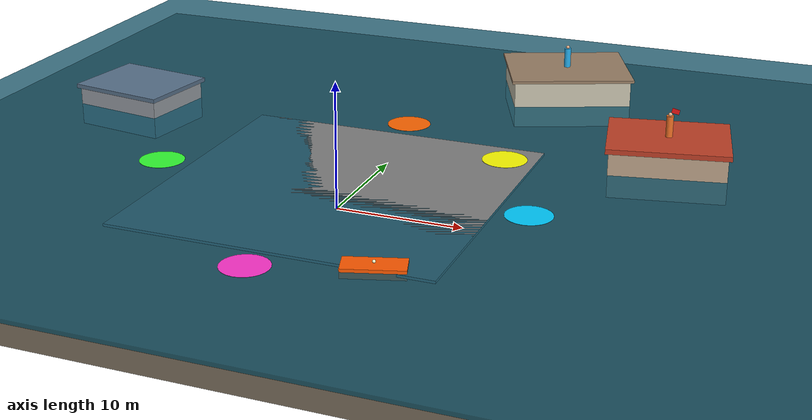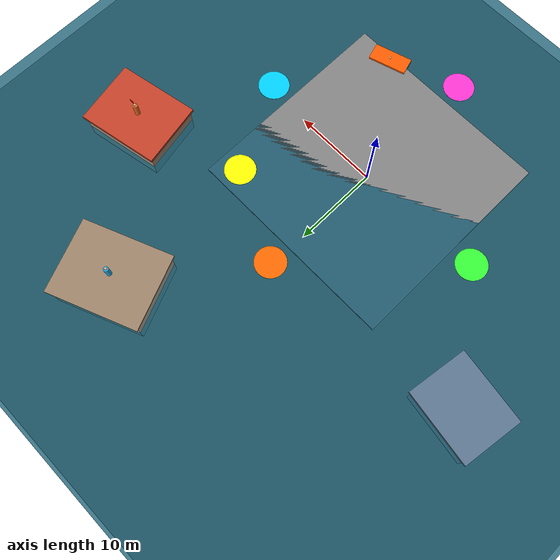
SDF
<sdf version="1.8">
 <world name="sutra_coastal_flood_world">
  <physics name="500hz" type="dart">
   <max_step_size>0.002</max_step_size>
   <real_time_factor>1.0</real_time_factor>
   <real_time_update_rate>500</real_time_update_rate>
  </physics>
  <plugin filename="gz-sim-physics-system" name="gz::sim::systems::Physics"/>
  <plugin filename="gz-sim-user-commands-system" name="gz::sim::systems::UserCommands"/>
  <plugin filename="gz-sim-scene-broadcaster-system" name="gz::sim::systems::SceneBroadcaster"/>
  <plugin filename="gz-sim-sensors-system" name="gz::sim::systems::Sensors">
   <render_engine>ogre2</render_engine>
  </plugin>
  <plugin filename="gz-sim-imu-system" name="gz::sim::systems::Imu"/>
  <plugin filename="gz-sim-air-pressure-system" name="gz::sim::systems::AirPressure"/>
  <plugin filename="gz-sim-magnetometer-system" name="gz::sim::systems::Magnetometer"/>
  <plugin filename="gz-sim-navsat-system" name="gz::sim::systems::NavSat"/>
  <plugin filename="gz-sim-wind-effects-system" name="gz::sim::systems::WindEffects">
   <horizontal><magnitude>0.0</magnitude><direction>1.0 0.0 0.0</direction></horizontal>
   <vertical><magnitude>0.0</magnitude></vertical>
  </plugin>
  <atmosphere type="adiabatic"/>
  <scene>
   <ambient>0.35 0.38 0.42 1.0</ambient>
   <background>0.45 0.55 0.65 1.0</background>
   <shadows>true</shadows>
   <grid>false</grid>
  </scene>
  <light name="sun" type="directional">
   <pose>0 0 100 0 0 0</pose>
   <diffuse>0.88 0.88 0.85 1</diffuse>
   <specular>0.35 0.35 0.35 1</specular>
   <direction>-0.3 0.3 -0.9</direction>
  </light>
  <model name="coastal_riverbed">
   <static>true</static>
   <link name="link">
    <collision name="col">
     <geometry><plane><normal>0 0 1</normal><size>300 300</size></plane></geometry>
    </collision>
    <visual name="vis">
     <geometry><plane><normal>0 0 1</normal><size>300 300</size></plane></geometry>
     <material>
      <ambient>0.28 0.25 0.20 1</ambient>
      <diffuse>0.38 0.34 0.28 1</diffuse>
      <specular>0.08 0.08 0.08 1</specular>
      <pbr><metal><roughness>0.90</roughness><metalness>0.05</metalness></metal></pbr>
     </material>
    </visual>
   </link>
  </model>
  <model name="flood_water_surface">
   <static>true</static>
   <pose>0 0 1.65 0 0 0</pose>
   <link name="link">
    <visual name="vis">
     <geometry><plane><normal>0 0 1</normal><size>300 300</size></plane></geometry>
     <material>
      <ambient>0.05 0.25 0.32 0.80</ambient>
      <diffuse>0.08 0.35 0.44 0.80</diffuse>
      <specular>0.85 0.90 0.95 0.85</specular>
      <pbr><metal><roughness>0.05</roughness><metalness>0.15</metalness></metal></pbr>
     </material>
    </visual>
   </link>
  </model>
  <model name="coastal_launch_platform">
   <static>true</static>
   <pose>0 0 1.70 0 0 0</pose>
   <link name="link">
    <collision name="col"><geometry><box><size>25.0 25.0 0.20</size></box></geometry></collision>
    <visual name="vis">
     <geometry><box><size>25.0 25.0 0.20</size></box></geometry>
     <material>
      <ambient>0.35 0.35 0.35 1</ambient>
      <diffuse>0.50 0.50 0.50 1</diffuse>
      <specular>0.2 0.2 0.2 1</specular>
     </material>
    </visual>
   </link>
  </model>
  <model name="helipad_alpha">
   <static>true</static>
   <pose>15.0 0.0 1.81 0 0 0</pose>
   <link name="l">
    <visual name="v">
     <geometry><cylinder><radius>1.8</radius><length>0.02</length></cylinder></geometry>
     <material><ambient>0 0.8 1 1</ambient><diffuse>0 0.8 1 1</diffuse><emissive>0 0.4 0.6 1</emissive></material>
    </visual>
   </link>
  </model>
  <model name="helipad_beta">
   <static>true</static>
   <pose>0.0 15.0 1.81 0 0 0</pose>
   <link name="l">
    <visual name="v">
     <geometry><cylinder><radius>1.8</radius><length>0.02</length></cylinder></geometry>
     <material><ambient>1 0.4 0 1</ambient><diffuse>1 0.4 0 1</diffuse><emissive>0.6 0.2 0 1</emissive></material>
    </visual>
   </link>
  </model>
  <model name="helipad_gamma">
   <static>true</static>
   <pose>-15.0 0.0 1.81 0 0 0</pose>
   <link name="l">
    <visual name="v">
     <geometry><cylinder><radius>1.8</radius><length>0.02</length></cylinder></geometry>
     <material>
      <ambient>0.2 1 0.2 1</ambient>
      <diffuse>0.2 1 0.2 1</diffuse>
      <emissive>0.1 0.5 0.1 1</emissive>
     </material>
    </visual>
   </link>
  </model>
  <model name="helipad_delta">
   <static>true</static>
   <pose>0.0 -15.0 1.81 0 0 0</pose>
   <link name="l">
    <visual name="v">
     <geometry><cylinder><radius>1.8</radius><length>0.02</length></cylinder></geometry>
     <material>
      <ambient>1 0.2 0.8 1</ambient>
      <diffuse>1 0.2 0.8 1</diffuse>
      <emissive>0.5 0.1 0.4 1</emissive>
     </material>
    </visual>
   </link>
  </model>
  <model name="helipad_epsilon">
   <static>true</static>
   <pose>10.0 10.0 1.81 0 0 0</pose>
   <link name="l">
    <visual name="v">
     <geometry><cylinder><radius>1.8</radius><length>0.02</length></cylinder></geometry>
     <material><ambient>1 1 0 1</ambient><diffuse>1 1 0 1</diffuse><emissive>0.5 0.5 0 1</emissive></material>
    </visual>
   </link>
  </model>
  <model name="submerged_house_east">
   <static>true</static>
   <pose>22.0 14.0 1.80 0 0 0.2</pose>
   <link name="link">
    <collision name="col"><geometry><box><size>9.0 7.0 3.6</size></box></geometry></collision>
    <visual name="walls">
     <geometry><box><size>9.0 7.0 3.6</size></box></geometry>
     <material><ambient>0.65 0.55 0.45 1</ambient><diffuse>0.75 0.65 0.55 1</diffuse></material>
    </visual>
    <visual name="roof">
     <pose>0 0 2.0 0 0 0</pose>
     <geometry><box><size>9.5 7.5 0.4</size></box></geometry>
     <material><ambient>0.60 0.18 0.10 1</ambient><diffuse>0.75 0.25 0.15 1</diffuse></material>
    </visual>
   </link>
  </model>
  <model name="submerged_house_west">
   <static>true</static>
   <pose>-24.0 12.0 1.65 0 0 -0.15</pose>
   <link name="link">
    <collision name="col"><geometry><box><size>8.0 6.5 3.3</size></box></geometry></collision>
    <visual name="walls">
     <geometry><box><size>8.0 6.5 3.3</size></box></geometry>
     <material><ambient>0.50 0.52 0.55 1</ambient><diffuse>0.60 0.62 0.65 1</diffuse></material>
    </visual>
    <visual name="roof">
     <pose>0 0 1.8 0 0 0</pose>
     <geometry><box><size>8.5 7.0 0.35</size></box></geometry>
     <material><ambient>0.25 0.35 0.45 1</ambient><diffuse>0.35 0.45 0.55 1</diffuse></material>
    </visual>
   </link>
  </model>
  <model name="submerged_house_north">
   <static>true</static>
   <pose>10.0 28.0 2.00 0 0 0.4</pose>
   <link name="link">
    <collision name="col"><geometry><box><size>10.0 8.0 4.0</size></box></geometry></collision>
    <visual name="walls">
     <geometry><box><size>10.0 8.0 4.0</size></box></geometry>
     <material><ambient>0.70 0.68 0.60 1</ambient><diffuse>0.80 0.78 0.70 1</diffuse></material>
    </visual>
    <visual name="roof_terrace">
     <pose>0 0 2.1 0 0 0</pose>
     <geometry><box><size>10.5 8.5 0.25</size></box></geometry>
     <material><ambient>0.5 0.4 0.3 1</ambient><diffuse>0.6 0.5 0.4 1</diffuse></material>
    </visual>
   </link>
  </model>
  <model name="ndrf_rescue_dinghy">
   <static>true</static>
   <pose>8.0 -12.0 1.70 0 0 0.3</pose>
   <link name="link">
    <collision name="col"><geometry><box><size>4.5 2.0 0.7</size></box></geometry></collision>
    <visual name="hull">
     <geometry><box><size>4.5 2.0 0.7</size></box></geometry>
     <material>
      <ambient>1.0 0.30 0.0 1</ambient>
      <diffuse>1.0 0.35 0.0 1</diffuse>
      <emissive>0.3 0.08 0.0 1</emissive>
     </material>
    </visual>
    <visual name="beacon">
     <pose>0 0 0.5 0 0 0</pose>
     <geometry><sphere><radius>0.12</radius></sphere></geometry>
     <material>
      <ambient>1 1 0.8 1</ambient>
      <diffuse>1 1 0.8 1</diffuse>
      <emissive>0.8 0.8 0.5 1</emissive>
     </material>
    </visual>
   </link>
  </model>
  <model name="survivor_rooftop_east">
   <static>true</static>
   <pose>22.0 14.0 4.0 0 0 0</pose>
   <link name="link">
    <collision name="col">
     <pose>0 0 0.85 0 0 0</pose>
     <geometry><cylinder><radius>0.3</radius><length>1.7</length></cylinder></geometry>
    </collision>
    <visual name="body">
     <pose>0 0 0.85 0 0 0</pose>
     <geometry><cylinder><radius>0.28</radius><length>1.7</length></cylinder></geometry>
     <material><ambient>0.9 0.4 0.1 1</ambient><diffuse>0.95 0.45 0.15 1</diffuse></material>
    </visual>
    <visual name="head">
     <pose>0 0 1.8 0 0 0</pose>
     <geometry><sphere><radius>0.16</radius></sphere></geometry>
     <material><ambient>0.85 0.65 0.5 1</ambient><diffuse>0.9 0.7 0.55 1</diffuse></material>
    </visual>
    <visual name="flag">
     <pose>0.4 0 2.1 0 0.2 0</pose>
     <geometry><box><size>0.6 0.02 0.4</size></box></geometry>
     <material>
      <ambient>1 0.1 0.1 1</ambient>
      <diffuse>1 0.1 0.1 1</diffuse>
      <emissive>0.5 0.05 0.05 1</emissive>
     </material>
    </visual>
   </link>
  </model>
  <model name="survivor_balcony_north">
   <static>true</static>
   <pose>10.0 28.0 4.2 0 0 1.2</pose>
   <link name="link">
    <collision name="col">
     <pose>0 0 0.85 0 0 0</pose>
     <geometry><cylinder><radius>0.3</radius><length>1.7</length></cylinder></geometry>
    </collision>
    <visual name="body">
     <pose>0 0 0.85 0 0 0</pose>
     <geometry><cylinder><radius>0.28</radius><length>1.7</length></cylinder></geometry>
     <material><ambient>0.1 0.6 0.9 1</ambient><diffuse>0.15 0.7 0.95 1</diffuse></material>
    </visual>
    <visual name="head">
     <pose>0 0 1.8 0 0 0</pose>
     <geometry><sphere><radius>0.16</radius></sphere></geometry>
     <material><ambient>0.85 0.65 0.5 1</ambient><diffuse>0.9 0.7 0.55 1</diffuse></material>
    </visual>
   </link>
  </model>
 </world>
</sdf>
